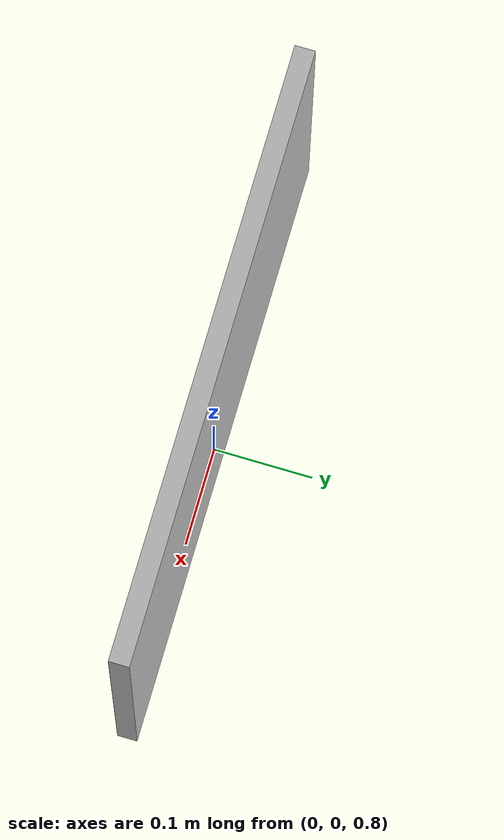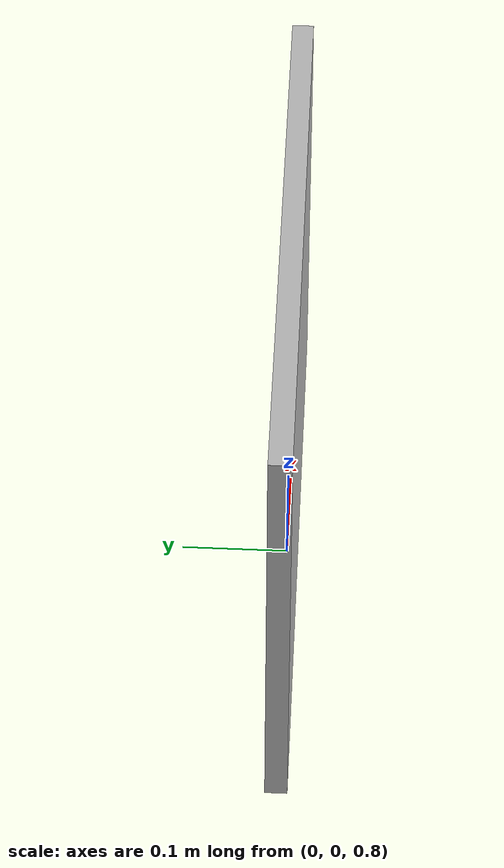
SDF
<?xml version="1.0" ?>
<sdf version="1.6">
  <model name="bed_sign_restaurant">
    <static>true</static>

    <link name="sign_link">
      <!-- 牌子整體的位置（插入模型時還可以再移動） -->
      <pose>0 0 1.0 0 0 0</pose>

      <collision name="collision">
        <geometry>
          <!-- 一片薄薄的板子 -->
          <box>
            <size>0.6 0.02 0.4</size>
          </box>
        </geometry>
      </collision>

      <visual name="visual">
        <geometry>
          <box>
            <size>0.6 0.02 0.4</size>
          </box>
        </geometry>

        <material>
          <script>
            <!-- 告訴 Gazebo 去哪裡找 .material -->
            <uri>model://sign_restaurant/materials/scripts</uri>
            <!-- 這行很重要：讓它同時把 textures 資料夾加入搜尋路徑 -->
            <uri>model://sign_restaurant/materials/textures</uri>

            <!-- 對應 bed_signs.material 裡的 material 名字 -->
            <name>BedSigns/restaurant_sign</name>
          </script>
        </material>
      </visual>
    </link>
  </model>
</sdf>
